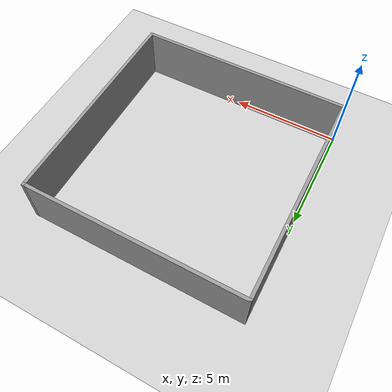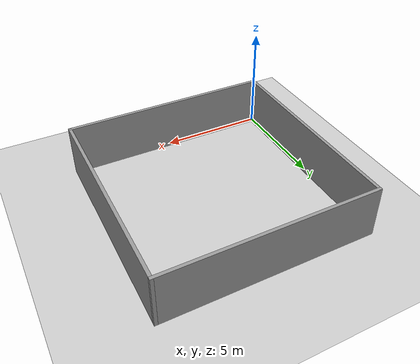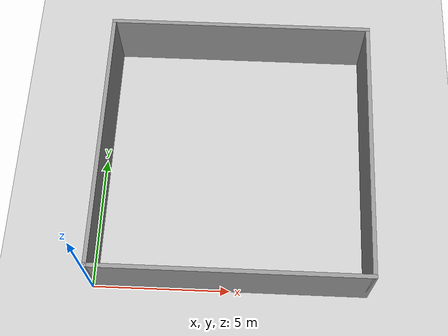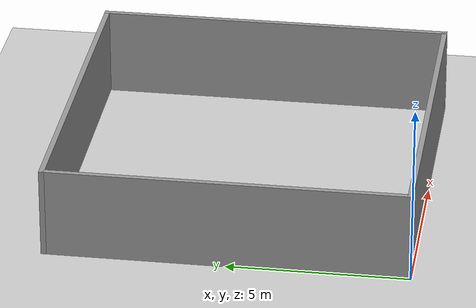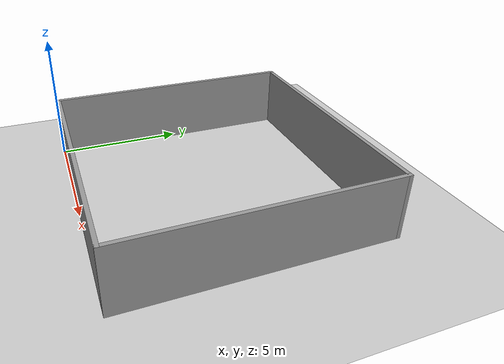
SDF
<sdf version="1.7">
 <world name="default">
  <model name="ground_plane">
   <static>1</static>
   <link name="link">
    <collision name="collision">
     <geometry><plane><normal>0 0 1</normal><size>100 100</size></plane></geometry>
     <surface><friction><ode><mu>100</mu><mu2>50</mu2></ode></friction></surface>
    </collision>
    <visual name="visual">
     <cast_shadows>0</cast_shadows>
     <geometry><plane><normal>0 0 1</normal><size>100 100</size></plane></geometry>
     <material>
      <script><uri>file://media/materials/scripts/gazebo.material</uri><name>Gazebo/Grey</name></script>
     </material>
    </visual>
   </link>
  </model>
  <model name="inter">
   <pose>5 5 0 0 -0 0</pose>
   <link name="Wall_2">
    <collision name="Wall_2_Collision">
     <geometry><box><size>10 0.15 2.5</size></box></geometry>
     <pose>0 0 1.25 0 -0 0</pose>
    </collision>
    <visual name="Wall_2_Visual">
     <pose>0 0 1.25 0 -0 0</pose>
     <geometry><box><size>10 0.15 2.5</size></box></geometry>
     <material>
      <script><uri>file://media/materials/scripts/gazebo.material</uri><name>Gazebo/Grey</name></script>
      <ambient>1 1 1 1</ambient>
     </material>
     <meta><layer>0</layer></meta>
    </visual>
    <pose>0 -4.925 0 0 -0 0</pose>
   </link>
   <link name="Wall_6">
    <collision name="Wall_6_Collision">
     <geometry><box><size>10 0.15 2.5</size></box></geometry>
     <pose>0 0 1.25 0 -0 0</pose>
    </collision>
    <visual name="Wall_6_Visual">
     <pose>0 0 1.25 0 -0 0</pose>
     <geometry><box><size>10 0.15 2.5</size></box></geometry>
     <material>
      <script><uri>file://media/materials/scripts/gazebo.material</uri><name>Gazebo/Grey</name></script>
      <ambient>1 1 1 1</ambient>
     </material>
     <meta><layer>0</layer></meta>
    </visual>
    <pose>4.925 0 0 0 -0 1.5708</pose>
   </link>
   <link name="Wall_7">
    <collision name="Wall_7_Collision">
     <geometry><box><size>10 0.15 2.5</size></box></geometry>
     <pose>0 0 1.25 0 -0 0</pose>
    </collision>
    <visual name="Wall_7_Visual">
     <pose>0 0 1.25 0 -0 0</pose>
     <geometry><box><size>10 0.15 2.5</size></box></geometry>
     <material>
      <script><uri>file://media/materials/scripts/gazebo.material</uri><name>Gazebo/Grey</name></script>
      <ambient>1 1 1 1</ambient>
     </material>
     <meta><layer>0</layer></meta>
    </visual>
    <pose>0 4.925 0 0 -0 3.14159</pose>
   </link>
   <link name="Wall_8">
    <collision name="Wall_8_Collision">
     <geometry><box><size>10 0.15 2.5</size></box></geometry>
     <pose>0 0 1.25 0 -0 0</pose>
    </collision>
    <visual name="Wall_8_Visual">
     <pose>0 0 1.25 0 -0 0</pose>
     <geometry><box><size>10 0.15 2.5</size></box></geometry>
     <material>
      <script><uri>file://media/materials/scripts/gazebo.material</uri><name>Gazebo/Grey</name></script>
      <ambient>1 1 1 1</ambient>
     </material>
     <meta><layer>0</layer></meta>
    </visual>
    <pose>-4.925 0 0 0 -0 -1.5708</pose>
   </link>
   <static>1</static>
  </model>
 </world>
</sdf>
